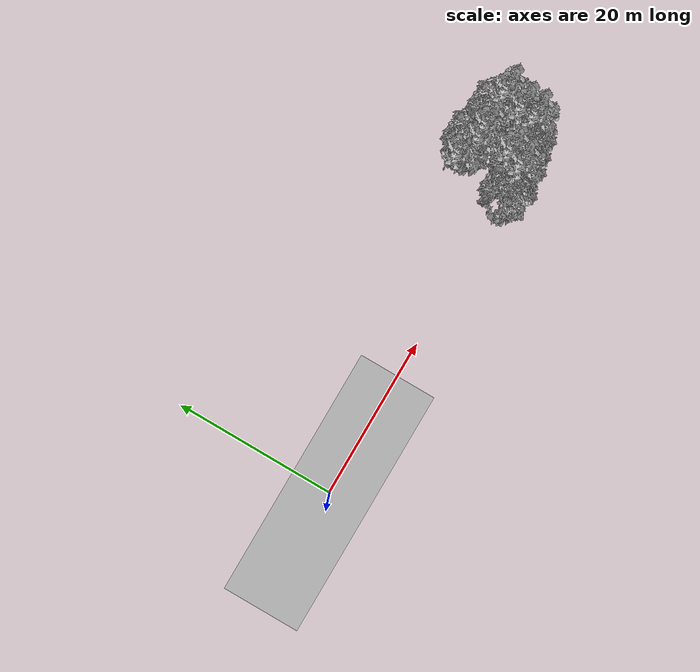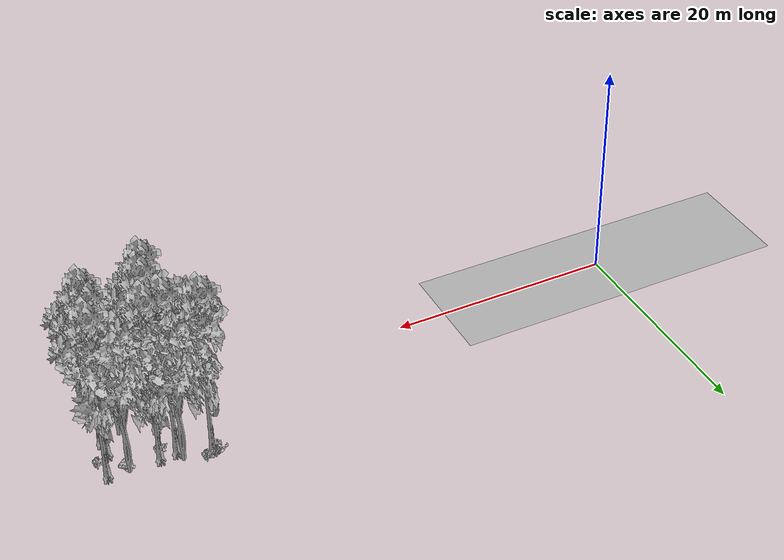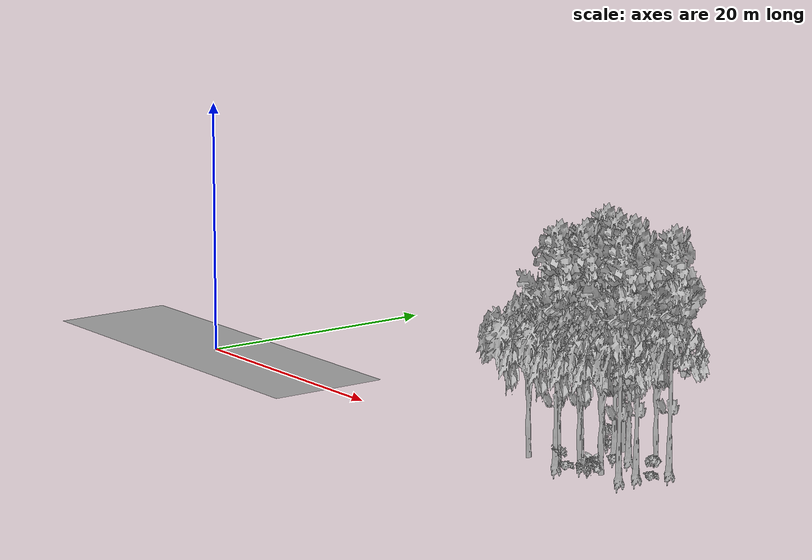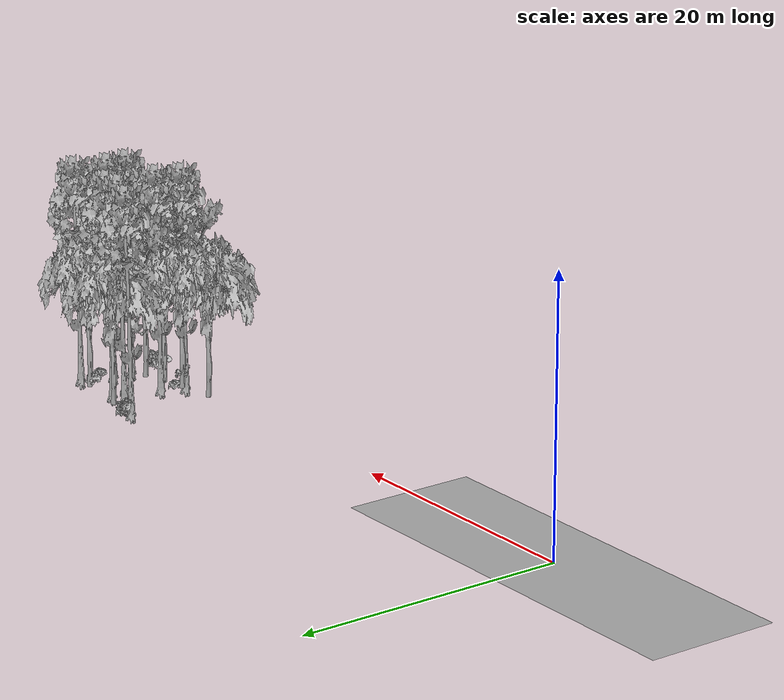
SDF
<sdf version="1.7">
 <world name="default">
  <model name="ground_plane">
   <static>1</static>
   <link name="link">
    <collision name="collision">
     <geometry><plane><normal>0 0 1</normal><size>100 100</size></plane></geometry>
     <surface><contact><ode><min_depth>0.01</min_depth><max_vel>0</max_vel></ode></contact></surface>
    </collision>
    <visual name="grass">
     <cast_shadows>0</cast_shadows>
     <geometry>
      <mesh>
       <scale>0.5814285714285714 0.18142857142857144 0.1</scale>
       <uri>file://grass_plane/meshes/grass_plane.dae</uri>
      </mesh>
     </geometry>
    </visual>
   </link>
  </model>
  <model name="Tree 61">
   <static>1</static>
   <pose>43.089033846496875 2.1911587286011667 0 1.57079 -0 0</pose>
   <link name="link">
    <collision name="collision">
     <geometry><mesh><scale>3.5 5 3.5</scale><uri>model://tree_9/meshes/tree_9.obj</uri></mesh></geometry>
    </collision>
    <visual name="visual">
     <geometry><mesh><scale>3.5 5 3.5</scale><uri>model://tree_9/meshes/tree_9.obj</uri></mesh></geometry>
    </visual>
   </link>
  </model>
  <model name="Tree 71">
   <static>1</static>
   <pose>42.39810420192289 0.45402422423311606 0 1.57079 -0 0</pose>
   <link name="link">
    <collision name="collision">
     <geometry><mesh><scale>3.5 5 3.5</scale><uri>model://tree_9/meshes/tree_9.obj</uri></mesh></geometry>
    </collision>
    <visual name="visual">
     <geometry><mesh><scale>3.5 5 3.5</scale><uri>model://tree_9/meshes/tree_9.obj</uri></mesh></geometry>
    </visual>
   </link>
  </model>
  <model name="Tree 99">
   <static>1</static>
   <pose>44.02215841767976 1.2097253536511765 0 1.57079 -0 0</pose>
   <link name="link">
    <collision name="collision">
     <geometry><mesh><scale>3.5 5 3.5</scale><uri>model://tree_2/meshes/tree_2.obj</uri></mesh></geometry>
    </collision>
    <visual name="visual">
     <geometry><mesh><scale>3.5 5 3.5</scale><uri>model://tree_2/meshes/tree_2.obj</uri></mesh></geometry>
    </visual>
   </link>
  </model>
  <model name="Tree 126">
   <static>1</static>
   <pose>47.589186215681764 3.404811685534032 0 1.57079 -0 0</pose>
   <link name="link">
    <collision name="collision">
     <geometry><mesh><scale>3.5 5 3.5</scale><uri>model://tree_9/meshes/tree_9.obj</uri></mesh></geometry>
    </collision>
    <visual name="visual">
     <geometry><mesh><scale>3.5 5 3.5</scale><uri>model://tree_9/meshes/tree_9.obj</uri></mesh></geometry>
    </visual>
   </link>
  </model>
  <model name="Tree 153">
   <static>1</static>
   <pose>46.51019929384853 6.0844003771376975 0 1.57079 -0 0</pose>
   <link name="link">
    <collision name="collision">
     <geometry><mesh><scale>3.5 5 3.5</scale><uri>model://tree_2/meshes/tree_2.obj</uri></mesh></geometry>
    </collision>
    <visual name="visual">
     <geometry><mesh><scale>3.5 5 3.5</scale><uri>model://tree_2/meshes/tree_2.obj</uri></mesh></geometry>
    </visual>
   </link>
  </model>
  <model name="Tree 155">
   <static>1</static>
   <pose>39.971857099006314 6.772859628984129 0 1.57079 -0 0</pose>
   <link name="link">
    <collision name="collision">
     <geometry><mesh><scale>3.5 5 3.5</scale><uri>model://tree_9/meshes/tree_9.obj</uri></mesh></geometry>
    </collision>
    <visual name="visual">
     <geometry><mesh><scale>3.5 5 3.5</scale><uri>model://tree_9/meshes/tree_9.obj</uri></mesh></geometry>
    </visual>
   </link>
  </model>
  <model name="Tree 174">
   <static>1</static>
   <pose>48.333261901269964 5.788577998746138 0 1.57079 -0 0</pose>
   <link name="link">
    <collision name="collision">
     <geometry><mesh><scale>3.5 5 3.5</scale><uri>model://tree_9/meshes/tree_9.obj</uri></mesh></geometry>
    </collision>
    <visual name="visual">
     <geometry><mesh><scale>3.5 5 3.5</scale><uri>model://tree_9/meshes/tree_9.obj</uri></mesh></geometry>
    </visual>
   </link>
  </model>
  <model name="Tree 245">
   <static>1</static>
   <pose>39.48919132726469 0.31286333357324025 0 1.57079 -0 0</pose>
   <link name="link">
    <collision name="collision">
     <geometry><mesh><scale>3.5 5 3.5</scale><uri>model://tree_2/meshes/tree_2.obj</uri></mesh></geometry>
    </collision>
    <visual name="visual">
     <geometry><mesh><scale>3.5 5 3.5</scale><uri>model://tree_2/meshes/tree_2.obj</uri></mesh></geometry>
    </visual>
   </link>
  </model>
  <model name="Tree 262">
   <static>1</static>
   <pose>45.90387216260885 1.5951478931761507 0 1.57079 -0 0</pose>
   <link name="link">
    <collision name="collision">
     <geometry><mesh><scale>3.5 5 3.5</scale><uri>model://tree_2/meshes/tree_2.obj</uri></mesh></geometry>
    </collision>
    <visual name="visual">
     <geometry><mesh><scale>3.5 5 3.5</scale><uri>model://tree_2/meshes/tree_2.obj</uri></mesh></geometry>
    </visual>
   </link>
  </model>
  <model name="Tree 273">
   <static>1</static>
   <pose>42.589479086236196 5.676800400030647 0 1.57079 -0 0</pose>
   <link name="link">
    <collision name="collision">
     <geometry><mesh><scale>3.5 5 3.5</scale><uri>model://tree_9/meshes/tree_9.obj</uri></mesh></geometry>
    </collision>
    <visual name="visual">
     <geometry><mesh><scale>3.5 5 3.5</scale><uri>model://tree_9/meshes/tree_9.obj</uri></mesh></geometry>
    </visual>
   </link>
  </model>
  <model name="Tree 279">
   <static>1</static>
   <pose>42.28046895449447 6.721101931792909 0 1.57079 -0 0</pose>
   <link name="link">
    <collision name="collision">
     <geometry><mesh><scale>3.5 5 3.5</scale><uri>model://tree_2/meshes/tree_2.obj</uri></mesh></geometry>
    </collision>
    <visual name="visual">
     <geometry><mesh><scale>3.5 5 3.5</scale><uri>model://tree_2/meshes/tree_2.obj</uri></mesh></geometry>
    </visual>
   </link>
  </model>
  <model name="Tree 316">
   <static>1</static>
   <pose>44.005339327405636 5.793235862871104 0 1.57079 -0 0</pose>
   <link name="link">
    <collision name="collision">
     <geometry><mesh><scale>3.5 5 3.5</scale><uri>model://tree_9/meshes/tree_9.obj</uri></mesh></geometry>
    </collision>
    <visual name="visual">
     <geometry><mesh><scale>3.5 5 3.5</scale><uri>model://tree_9/meshes/tree_9.obj</uri></mesh></geometry>
    </visual>
   </link>
  </model>
  <model name="Tree 421">
   <static>1</static>
   <pose>47.608082612530026 1.8156804695614746 0 1.57079 -0 0</pose>
   <link name="link">
    <collision name="collision">
     <geometry><mesh><scale>3.5 5 3.5</scale><uri>model://tree_9/meshes/tree_9.obj</uri></mesh></geometry>
    </collision>
    <visual name="visual">
     <geometry><mesh><scale>3.5 5 3.5</scale><uri>model://tree_9/meshes/tree_9.obj</uri></mesh></geometry>
    </visual>
   </link>
  </model>
  <model name="Tree 444">
   <static>1</static>
   <pose>42.27595306870367 0.7642708114096664 0 1.57079 -0 0</pose>
   <link name="link">
    <collision name="collision">
     <geometry><mesh><scale>3.5 5 3.5</scale><uri>model://tree_2/meshes/tree_2.obj</uri></mesh></geometry>
    </collision>
    <visual name="visual">
     <geometry><mesh><scale>3.5 5 3.5</scale><uri>model://tree_2/meshes/tree_2.obj</uri></mesh></geometry>
    </visual>
   </link>
  </model>
  <model name="Bush 50">
   <static>1</static>
   <pose>46.815279671534114 5.745766170215941 0 1.57079 -0 0</pose>
   <link name="link">
    <collision name="collision">
     <geometry><mesh><scale>2 2 2</scale><uri>model://bush_3/meshes/bush_3.obj</uri></mesh></geometry>
     <surface><contact><collide_without_contact>false</collide_without_contact></contact></surface>
    </collision>
    <visual name="visual">
     <geometry><mesh><scale>2 2 2</scale><uri>model://bush_3/meshes/bush_3.obj</uri></mesh></geometry>
    </visual>
   </link>
  </model>
  <model name="Bush 67">
   <static>1</static>
   <pose>39.67232097928215 7.447632947841921 0 1.57079 -0 0</pose>
   <link name="link">
    <collision name="collision">
     <geometry><mesh><scale>2 2 2</scale><uri>model://bush_4/meshes/bush_4.obj</uri></mesh></geometry>
     <surface><contact><collide_without_contact>false</collide_without_contact></contact></surface>
    </collision>
    <visual name="visual">
     <geometry><mesh><scale>2 2 2</scale><uri>model://bush_4/meshes/bush_4.obj</uri></mesh></geometry>
    </visual>
   </link>
  </model>
  <model name="Bush 76">
   <static>1</static>
   <pose>48.44932985058023 4.0108666687407535 0 1.57079 -0 0</pose>
   <link name="link">
    <collision name="collision">
     <geometry><mesh><scale>2 2 2</scale><uri>model://bush_2/meshes/bush_2.obj</uri></mesh></geometry>
     <surface><contact><collide_without_contact>false</collide_without_contact></contact></surface>
    </collision>
    <visual name="visual">
     <geometry><mesh><scale>2 2 2</scale><uri>model://bush_2/meshes/bush_2.obj</uri></mesh></geometry>
    </visual>
   </link>
  </model>
  <model name="Bush 133">
   <static>1</static>
   <pose>46.11795477558235 0.2248128408358845 0 1.57079 -0 0</pose>
   <link name="link">
    <collision name="collision">
     <geometry><mesh><scale>2 2 2</scale><uri>model://bush_1/meshes/bush_1.obj</uri></mesh></geometry>
     <surface><contact><collide_without_contact>false</collide_without_contact></contact></surface>
    </collision>
    <visual name="visual">
     <geometry><mesh><scale>2 2 2</scale><uri>model://bush_1/meshes/bush_1.obj</uri></mesh></geometry>
    </visual>
   </link>
  </model>
  <model name="Bush 149">
   <static>1</static>
   <pose>43.635521785238495 4.742380774622035 0 1.57079 -0 0</pose>
   <link name="link">
    <collision name="collision">
     <geometry><mesh><scale>2 2 2</scale><uri>model://bush_2/meshes/bush_2.obj</uri></mesh></geometry>
     <surface><contact><collide_without_contact>false</collide_without_contact></contact></surface>
    </collision>
    <visual name="visual">
     <geometry><mesh><scale>2 2 2</scale><uri>model://bush_2/meshes/bush_2.obj</uri></mesh></geometry>
    </visual>
   </link>
  </model>
  <model name="Bush 166">
   <static>1</static>
   <pose>42.960314581921224 0.9607431024818354 0 1.57079 -0 0</pose>
   <link name="link">
    <collision name="collision">
     <geometry><mesh><scale>2 2 2</scale><uri>model://bush_2/meshes/bush_2.obj</uri></mesh></geometry>
     <surface><contact><collide_without_contact>false</collide_without_contact></contact></surface>
    </collision>
    <visual name="visual">
     <geometry><mesh><scale>2 2 2</scale><uri>model://bush_2/meshes/bush_2.obj</uri></mesh></geometry>
    </visual>
   </link>
  </model>
  <model name="Bush 205">
   <static>1</static>
   <pose>40.46095533582471 7.147036352655515 0 1.57079 -0 0</pose>
   <link name="link">
    <collision name="collision">
     <geometry><mesh><scale>2 2 2</scale><uri>model://bush_2/meshes/bush_2.obj</uri></mesh></geometry>
     <surface><contact><collide_without_contact>false</collide_without_contact></contact></surface>
    </collision>
    <visual name="visual">
     <geometry><mesh><scale>2 2 2</scale><uri>model://bush_2/meshes/bush_2.obj</uri></mesh></geometry>
    </visual>
   </link>
  </model>
  <model name="Bush 313">
   <static>1</static>
   <pose>42.55965541405283 0.8133957481989178 0 1.57079 -0 0</pose>
   <link name="link">
    <collision name="collision">
     <geometry><mesh><scale>2 2 2</scale><uri>model://bush_5/meshes/bush_5.obj</uri></mesh></geometry>
     <surface><contact><collide_without_contact>false</collide_without_contact></contact></surface>
    </collision>
    <visual name="visual">
     <geometry><mesh><scale>2 2 2</scale><uri>model://bush_5/meshes/bush_5.obj</uri></mesh></geometry>
    </visual>
   </link>
  </model>
 </world>
</sdf>
